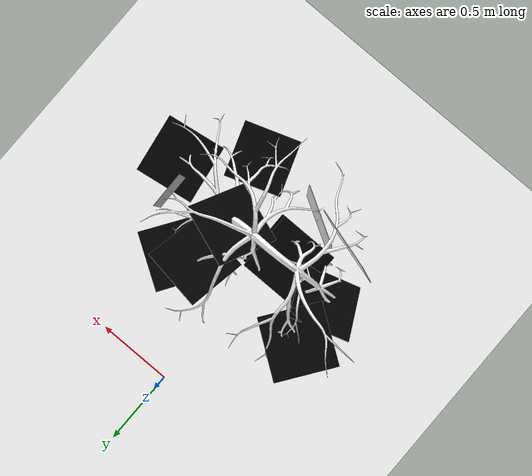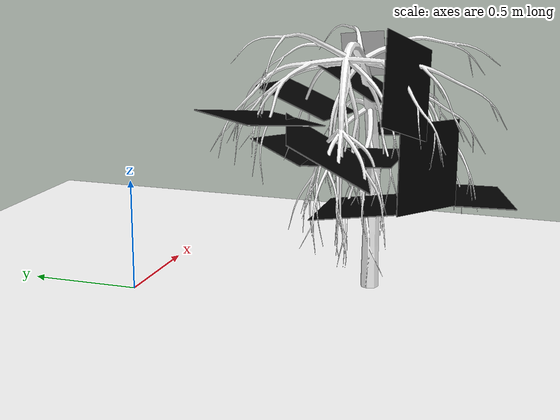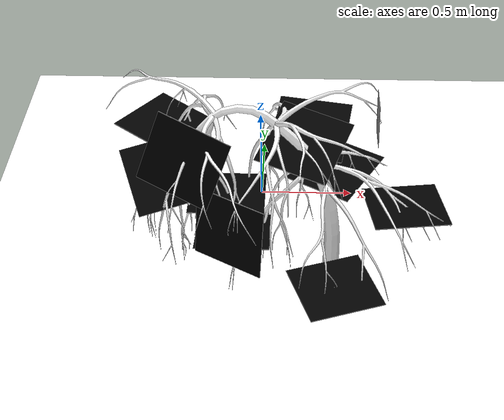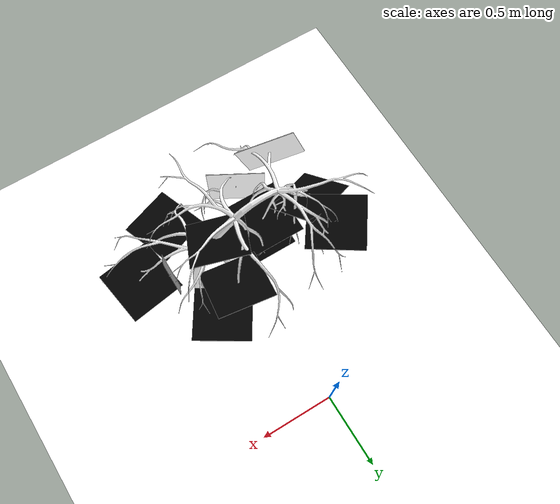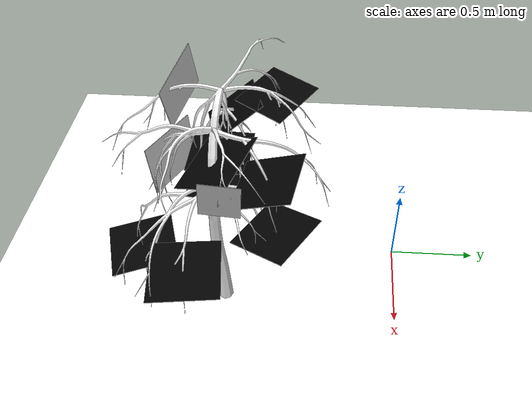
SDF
<?xml version="1.0"?>
<sdf version="1.7">
    <world name="apple_tree_5_marked">

        <plugin filename="gz-sim-physics-system" name="gz::sim::systems::Physics"/>
        <plugin filename="gz-sim-user-commands-system" name="gz::sim::systems::UserCommands"/>
        <plugin filename="gz-sim-scene-broadcaster-system" name="gz::sim::systems::SceneBroadcaster"/>
        <plugin filename="gz-sim-contact-system" name="gz::sim::systems::Contact"/>
        <plugin filename="gz-sim-sensors-system" name="gz::sim::systems::Sensors">
            <render_engine>ogre2</render_engine>
        </plugin>

        <physics type="ode">
            <max_step_size>0.01</max_step_size>
            <real_time_factor>1</real_time_factor>
            <max_contacts>10</max_contacts>
            <real_time_update_rate>1000</real_time_update_rate>
        </physics>

        <gravity>0 0 -9.8</gravity>

        <scene>
            <ambient>0.5 0.5 0.5 1</ambient>
            <background>0.3 0.7 0.9 1</background>
            <grid>false</grid>
            <sky>
                <clouds>
                    <speed>12</speed>
                </clouds>
            </sky>
            <shadows>true</shadows>
        </scene>

        <light name='sun' type='directional'>
            <pose>0 0 10 0 -0 0</pose>
            <cast_shadows>true</cast_shadows>
            <intensity>1</intensity>
            <direction>-0.5 0.1 -0.9</direction>
            <diffuse>0.8 0.8 0.8 1</diffuse>
            <specular>0.2 0.2 0.2 1</specular>
            <attenuation>
                <range>1000</range>
                <linear>0.01</linear>
                <constant>0.90000000000000002</constant>
                <quadratic>0.001</quadratic>
            </attenuation>
            <spot>
                <inner_angle>0</inner_angle>
                <outer_angle>0</outer_angle>
                <falloff>0</falloff>
            </spot>
        </light>

        <!-- Apple tree with crook canker disease -->
        <include>
            <uri>model://apple_tree_5</uri>
            <name>apple_tree_5</name>
            <pose>0.37377 -1.0 0 0 0 3.14159</pose> <!-- This goes 1.6 in x direction and -1 in y direction -->
        </include>

        <!-- Marker 0 (Shepherd's Crook) -->
        <include>
            <uri>model://aruco_marker_0</uri>
            <name>aruco_marker_0</name>
            <pose>0.574295 -0.904207 1.02896 -1.66139 0 0</pose>
        </include>

        <include>
            <uri>model://aruco_marker_1</uri>
            <name>aruco_marker_1</name>
            <pose>0.390707 -0.679226 0.613442 -1.53951 -0.195589 1.00522</pose>
        </include>

        <include>
            <uri>model://aruco_marker_2</uri>
            <name>aruco_marker_2</name>
            <pose>-0.415644 -0.744465 0.892917 -1.55406 0.117268 -0.616748</pose>
        </include>

        <include>
            <uri>model://aruco_marker_3</uri>
            <name>aruco_marker_3</name>
            <pose>-0.090014 -1.06497 0.497167 -1.71871 0 0</pose>
        </include>

        <include>
            <uri>model://aruco_marker_4</uri>
            <name>aruco_marker_4</name>
            <pose>-0.092005 -1.32432 0.679647 -0.527195 -1.51327 0</pose>
        </include>

        <include>
            <uri>model://aruco_marker_5</uri>
            <name>aruco_marker_5</name>
            <pose>0.386789 -1.41817 0.451857 -1.50461 -0.029565 0.338209</pose>
        </include>

        <!-- Marker 1 (Canker) -->
        <include>
            <uri>model://aruco_marker_6</uri>
            <name>aruco_marker_6</name>
            <pose>0.238417 -0.984792 0.945915 -1.15758 0.158992 -0.34652</pose>
        </include>

        <include>
            <uri>model://aruco_marker_7</uri>
            <name>aruco_marker_7</name>
            <pose>0.267463 -0.723498 0.859185 -1.20716 0.042127 -0.146433</pose>
        </include>

        <include>
            <uri>model://aruco_marker_8</uri>
            <name>aruco_marker_8</name>
            <pose>0.70961 -1.08859 0.671574 -1.61563 0.008878 0.150783</pose>
        </include>

        <include>
            <uri>model://aruco_marker_9</uri>
            <name>aruco_marker_9</name>
            <pose>-0.113741 -1.04356 0.700945 -1.61662 0 0</pose>
        </include>

        <include>
            <uri>model://aruco_marker_10</uri>
            <name>aruco_marker_10</name>
            <pose>-0.4015 -0.99997 0.777131 -1.01801 -0.148581 0.305181</pose>
        </include>

        <include>
            <uri>model://aruco_marker_11</uri>
            <name>aruco_marker_11</name>
            <pose>-0.287959 -1.26847 1.01593 -0.387766 -1.23396 0.085742</pose>
        </include>
    </world>
</sdf>

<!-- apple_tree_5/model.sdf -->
<sdf version="1.7">
    <model name="apple_tree_5">
        <static>true</static>
        <link name="ground">
        <visual name="ground">
            <geometry>
            <mesh>
                <uri>model://apple_tree_5/meshes/ground.obj</uri>
            </mesh>
            </geometry>
            <material>
            <ambient>0.600 0.600 0.600 1</ambient>
            <diffuse>1.000 1.000 1.000 1</diffuse>
            <specular>0.1 0.1 0.1 1</specular>
            <emissive>0 0 0 1</emissive>
            <pbr>
                <metal>
                <albedo_map>model://apple_tree_5/materials/dirt.jpg</albedo_map>
                <roughness>0.7</roughness>
                <metalness>0.0</metalness>
                </metal>
            </pbr>
            </material>
        </visual>
        <collision name="collision">
            <geometry>
            <mesh>
                <uri>model://apple_tree_5/meshes/ground.obj</uri>
            </mesh>
            </geometry>
            <surface>
            <contact/>
            </surface>
            <laser_retro>0.0</laser_retro>
        </collision>
        </link>
        <link name="apple_tree_5_link">

            <visual name="apple_tree_5_visual">
                <geometry>
                <mesh>
                    <uri>model://apple_tree_5/meshes/apple_tree_5.obj</uri>
                </mesh>
                </geometry>

                <material>
                    <ambient>0.6 0.6 0.6 1</ambient>
                    <diffuse>1 1 1 1</diffuse>
                    <specular>0.1 0.1 0.1 1</specular>
                    <emissive>0 0 0 1</emissive>

                    <pbr>
                        <metal>
                        <!-- Base color -->
                        <albedo_map>model://apple_tree_5/materials/tree_basecolor_baked.png</albedo_map>

                        <!-- Normal map -->
                        <normal_map>model://apple_tree_5/materials/tree_normal_baked.png</normal_map>

                        <!-- Roughness map (preferred) -->
                        <roughness_map>model://apple_tree_5/materials/tree_roughness_baked.png</roughness_map>

                        <!-- For bark -->
                        <metalness>0.0</metalness>

                        <!-- Optional: if your roughness map is missing/ignored, fallback constant -->
                        </metal>
                    </pbr>
                </material>

            </visual>

            <collision name="apple_tree_5_collision">
                <geometry>
                    <mesh>
                        <uri>model://apple_tree_5/meshes/apple_tree_5.obj</uri>
                    </mesh>
                </geometry>
                <surface>
                <contact>
                    <collide_without_contact>true</collide_without_contact>
                    <collide_bitmask>0x00</collide_bitmask>
                </contact>
                </surface>
            </collision>

        </link>
    </model>
</sdf>

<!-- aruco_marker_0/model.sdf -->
<sdf version='1.6'>
  <model name='aruco_marker_0'>
    <link name='link_0'>
      <pose frame=''>0 0 0 0 -0 0</pose>
      <inertial>
        <mass>1</mass>
        <inertia>
          <ixx>0</ixx>
          <ixy>0</ixy>
          <ixz>0</ixz>
          <iyy>0</iyy>
          <iyz>0</iyz>
          <izz>0</izz>
        </inertia>
      </inertial>
      <visual name='visual'>
        <pose frame=''>0 0 0 0 -0 0</pose>
        <geometry>
          <mesh>
            <uri>file://isr-testbed/aruco_marker_0/aruco_marker_0.dae</uri>
            <scale>0.1 0.1 0.1</scale>
          </mesh>
        </geometry>
        <material>
          <lighting>1</lighting>
          <script>
            <uri>file://media/materials/scripts/gazebo.material</uri>
            <name>Gazebo/DepthMapVS</name>
          </script>
          <ambient>0.3 0.3 0.3 1</ambient>
          <diffuse>0.7 0.7 0.7 1</diffuse>
          <specular>0.01 0.01 0.01 1</specular>
          <emissive>0 0 0 1</emissive>
        </material>
        <transparency>0</transparency>
        <cast_shadows>1</cast_shadows>
      </visual>
      <collision name='collision'>
        <laser_retro>0</laser_retro>
        <max_contacts>10</max_contacts>
        <pose frame=''>0 0 0 0 -0 0</pose>
        <geometry>
          <mesh>
            <uri>file://isr-testbed/aruco_marker_0/aruco_marker_0.dae</uri>
            <scale>0.1 0.1 0.1</scale>
          </mesh>
        </geometry>
        <surface>
          <friction>
            <ode>
              <mu>1</mu>
              <mu2>1</mu2>
              <fdir1>0 0 0</fdir1>
              <slip1>0</slip1>
              <slip2>0</slip2>
            </ode>
            <torsional>
              <coefficient>1</coefficient>
              <patch_radius>0</patch_radius>
              <surface_radius>0</surface_radius>
              <use_patch_radius>1</use_patch_radius>
              <ode>
                <slip>0</slip>
              </ode>
            </torsional>
          </friction>
          <bounce>
            <restitution_coefficient>0</restitution_coefficient>
            <threshold>1e+06</threshold>
          </bounce>
          <contact>
            <collide_without_contact>0</collide_without_contact>
            <collide_without_contact_bitmask>1</collide_without_contact_bitmask>
            <collide_bitmask>1</collide_bitmask>
            <ode>
              <soft_cfm>0</soft_cfm>
              <soft_erp>0.2</soft_erp>
              <kp>1e+13</kp>
              <kd>1</kd>
              <max_vel>0.01</max_vel>
              <min_depth>0</min_depth>
            </ode>
            <bullet>
              <split_impulse>1</split_impulse>
              <split_impulse_penetration_threshold>-0.01</split_impulse_penetration_threshold>
              <soft_cfm>0</soft_cfm>
              <soft_erp>0.2</soft_erp>
              <kp>1e+13</kp>
              <kd>1</kd>
            </bullet>
          </contact>
        </surface>
      </collision>
    </link>
    <static>1</static>
    <allow_auto_disable>1</allow_auto_disable>
  </model>
</sdf>

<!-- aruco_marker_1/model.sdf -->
<sdf version="1.9">
  <model name="aruco_marker_1">
    <static>true</static>

    <link name="link">
      <visual name="front">
        <pose>0 0 0 0 0 0</pose>
        <geometry>
          <box>
            <size>0.35 0.002 0.35</size>
          </box>
        </geometry>

        <material>
          <ambient>1 1 1 1</ambient>
          <diffuse>1 1 1 1</diffuse>
          <specular>0.1 0.1 0.1 1</specular>
          <emissive>0 0 0 1</emissive>

          <pbr>
            <metal>
              <albedo_map>
                model://aruco/aruco_marker_1/materials/textures/marker_1.png
              </albedo_map>
              <emissive_map>
                model://aruco/aruco_marker_1/materials/textures/marker_1.png
              </emissive_map>
            </metal>
          </pbr>
        </material>
      </visual>

      <visual name="back">
        <pose>0 -0.002 0 0 0 3.1416</pose>
        <geometry>
          <box>
            <size>0.35 0.002 0.35</size>
          </box>
        </geometry>
        <material>
          <ambient>0 0 0 1</ambient>
          <diffuse>0 0 0 1</diffuse>
        </material>
      </visual>

    </link>

  </model>
</sdf>

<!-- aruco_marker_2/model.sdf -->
<sdf version="1.9">
  <model name="aruco_marker_2">
    <static>true</static>

    <link name="link">
      <visual name="front">
        <pose>0 0 0 0 0 0</pose>
        <geometry>
          <box>
            <size>0.35 0.002 0.35</size>
          </box>
        </geometry>

        <material>
          <ambient>1 1 1 1</ambient>
          <diffuse>1 1 1 1</diffuse>
          <specular>0.1 0.1 0.1 1</specular>
          <emissive>0 0 0 1</emissive>

          <pbr>
            <metal>
              <albedo_map>
                model://aruco/aruco_marker_2/materials/textures/marker_2.png
              </albedo_map>
              <emissive_map>
                model://aruco/aruco_marker_2/materials/textures/marker_2.png
              </emissive_map>
            </metal>
          </pbr>
        </material>
      </visual>

      <visual name="back">
        <pose>0 -0.002 0 0 0 3.1416</pose>
        <geometry>
          <box>
            <size>0.35 0.002 0.35</size>
          </box>
        </geometry>
        <material>
          <ambient>0 0 0 1</ambient>
          <diffuse>0 0 0 1</diffuse>
        </material>
      </visual>

    </link>

  </model>
</sdf>

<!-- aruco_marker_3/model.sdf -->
<sdf version="1.9">
  <model name="aruco_marker_3">
    <static>true</static>

    <link name="link">
      <visual name="front">
        <pose>0 0 0 0 0 0</pose>
        <geometry>
          <box>
            <size>0.35 0.002 0.35</size>
          </box>
        </geometry>

        <material>
          <ambient>1 1 1 1</ambient>
          <diffuse>1 1 1 1</diffuse>
          <specular>0.1 0.1 0.1 1</specular>
          <emissive>0 0 0 1</emissive>

          <pbr>
            <metal>
              <albedo_map>
                model://aruco/aruco_marker_3/materials/textures/marker_3.png
              </albedo_map>
              <emissive_map>
                model://aruco/aruco_marker_3/materials/textures/marker_3.png
              </emissive_map>
            </metal>
          </pbr>
        </material>
      </visual>

      <visual name="back">
        <pose>0 -0.002 0 0 0 3.1416</pose>
        <geometry>
          <box>
            <size>0.35 0.002 0.35</size>
          </box>
        </geometry>
        <material>
          <ambient>0 0 0 1</ambient>
          <diffuse>0 0 0 1</diffuse>
        </material>
      </visual>

    </link>

  </model>
</sdf>

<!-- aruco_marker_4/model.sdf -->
<sdf version="1.9">
  <model name="aruco_marker_4">
    <static>true</static>

    <link name="link">
      <visual name="front">
        <pose>0 0 0 0 0 0</pose>
        <geometry>
          <box>
            <size>0.35 0.002 0.35</size>
          </box>
        </geometry>

        <material>
          <ambient>1 1 1 1</ambient>
          <diffuse>1 1 1 1</diffuse>
          <specular>0.1 0.1 0.1 1</specular>
          <emissive>0 0 0 1</emissive>

          <pbr>
            <metal>
              <albedo_map>
                model://aruco/aruco_marker_4/materials/textures/marker_4.png
              </albedo_map>
              <emissive_map>
                model://aruco/aruco_marker_4/materials/textures/marker_4.png
              </emissive_map>
            </metal>
          </pbr>
        </material>
      </visual>

      <visual name="back">
        <pose>0 -0.002 0 0 0 3.1416</pose>
        <geometry>
          <box>
            <size>0.35 0.002 0.35</size>
          </box>
        </geometry>
        <material>
          <ambient>0 0 0 1</ambient>
          <diffuse>0 0 0 1</diffuse>
        </material>
      </visual>

    </link>

  </model>
</sdf>

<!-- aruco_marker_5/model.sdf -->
<sdf version="1.9">
  <model name="aruco_marker_5">
    <static>true</static>

    <link name="link">
      <visual name="front">
        <pose>0 0 0 0 0 0</pose>
        <geometry>
          <box>
            <size>0.35 0.002 0.35</size>
          </box>
        </geometry>

        <material>
          <ambient>1 1 1 1</ambient>
          <diffuse>1 1 1 1</diffuse>
          <specular>0.1 0.1 0.1 1</specular>
          <emissive>0 0 0 1</emissive>

          <pbr>
            <metal>
              <albedo_map>
                model://aruco/aruco_marker_5/materials/textures/marker_5.png
              </albedo_map>
              <emissive_map>
                model://aruco/aruco_marker_5/materials/textures/marker_5.png
              </emissive_map>
            </metal>
          </pbr>
        </material>
      </visual>

      <visual name="back">
        <pose>0 -0.002 0 0 0 3.1416</pose>
        <geometry>
          <box>
            <size>0.35 0.002 0.35</size>
          </box>
        </geometry>
        <material>
          <ambient>0 0 0 1</ambient>
          <diffuse>0 0 0 1</diffuse>
        </material>
      </visual>

    </link>

  </model>
</sdf>

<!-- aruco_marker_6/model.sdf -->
<sdf version="1.9">
  <model name="aruco_marker_6">
    <static>true</static>

    <link name="link">
      <visual name="front">
        <pose>0 0 0 0 0 0</pose>
        <geometry>
          <box>
            <size>0.35 0.002 0.35</size>
          </box>
        </geometry>

        <material>
          <ambient>1 1 1 1</ambient>
          <diffuse>1 1 1 1</diffuse>
          <specular>0.1 0.1 0.1 1</specular>
          <emissive>0 0 0 1</emissive>

          <pbr>
            <metal>
              <albedo_map>
                model://aruco/aruco_marker_6/materials/textures/marker_6.png
              </albedo_map>
              <emissive_map>
                model://aruco/aruco_marker_6/materials/textures/marker_6.png
              </emissive_map>
            </metal>
          </pbr>
        </material>
      </visual>

      <visual name="back">
        <pose>0 -0.002 0 0 0 3.1416</pose>
        <geometry>
          <box>
            <size>0.35 0.002 0.35</size>
          </box>
        </geometry>
        <material>
          <ambient>0 0 0 1</ambient>
          <diffuse>0 0 0 1</diffuse>
        </material>
      </visual>

    </link>

  </model>
</sdf>

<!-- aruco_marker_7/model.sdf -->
<sdf version="1.9">
  <model name="aruco_marker_7">
    <static>true</static>

    <link name="link">
      <visual name="front">
        <pose>0 0 0 0 0 0</pose>
        <geometry>
          <box>
            <size>0.35 0.002 0.35</size>
          </box>
        </geometry>

        <material>
          <ambient>1 1 1 1</ambient>
          <diffuse>1 1 1 1</diffuse>
          <specular>0.1 0.1 0.1 1</specular>
          <emissive>0 0 0 1</emissive>

          <pbr>
            <metal>
              <albedo_map>
                model://aruco/aruco_marker_7/materials/textures/marker_7.png
              </albedo_map>
              <emissive_map>
                model://aruco/aruco_marker_7/materials/textures/marker_7.png
              </emissive_map>
            </metal>
          </pbr>
        </material>
      </visual>

      <visual name="back">
        <pose>0 -0.002 0 0 0 3.1416</pose>
        <geometry>
          <box>
            <size>0.35 0.002 0.35</size>
          </box>
        </geometry>
        <material>
          <ambient>0 0 0 1</ambient>
          <diffuse>0 0 0 1</diffuse>
        </material>
      </visual>

    </link>

  </model>
</sdf>

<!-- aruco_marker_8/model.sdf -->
<sdf version="1.9">
  <model name="aruco_marker_8">
    <static>true</static>

    <link name="link">
      <visual name="front">
        <pose>0 0 0 0 0 0</pose>
        <geometry>
          <box>
            <size>0.35 0.002 0.35</size>
          </box>
        </geometry>

        <material>
          <ambient>1 1 1 1</ambient>
          <diffuse>1 1 1 1</diffuse>
          <specular>0.1 0.1 0.1 1</specular>
          <emissive>0 0 0 1</emissive>

          <pbr>
            <metal>
              <albedo_map>
                model://aruco/aruco_marker_8/materials/textures/marker_8.png
              </albedo_map>
              <emissive_map>
                model://aruco/aruco_marker_8/materials/textures/marker_8.png
              </emissive_map>
            </metal>
          </pbr>
        </material>
      </visual>

      <visual name="back">
        <pose>0 -0.002 0 0 0 3.1416</pose>
        <geometry>
          <box>
            <size>0.35 0.002 0.35</size>
          </box>
        </geometry>
        <material>
          <ambient>0 0 0 1</ambient>
          <diffuse>0 0 0 1</diffuse>
        </material>
      </visual>

    </link>

  </model>
</sdf>

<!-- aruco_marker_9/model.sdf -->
<sdf version="1.9">
  <model name="aruco_marker_9">
    <static>true</static>

    <link name="link">
      <visual name="front">
        <pose>0 0 0 0 0 0</pose>
        <geometry>
          <box>
            <size>0.35 0.002 0.35</size>
          </box>
        </geometry>

        <material>
          <ambient>1 1 1 1</ambient>
          <diffuse>1 1 1 1</diffuse>
          <specular>0.1 0.1 0.1 1</specular>
          <emissive>0 0 0 1</emissive>

          <pbr>
            <metal>
              <albedo_map>
                model://aruco/aruco_marker_9/materials/textures/marker_9.png
              </albedo_map>
              <emissive_map>
                model://aruco/aruco_marker_9/materials/textures/marker_9.png
              </emissive_map>
            </metal>
          </pbr>
        </material>
      </visual>

      <visual name="back">
        <pose>0 -0.002 0 0 0 3.1416</pose>
        <geometry>
          <box>
            <size>0.35 0.002 0.35</size>
          </box>
        </geometry>
        <material>
          <ambient>0 0 0 1</ambient>
          <diffuse>0 0 0 1</diffuse>
        </material>
      </visual>

    </link>

  </model>
</sdf>

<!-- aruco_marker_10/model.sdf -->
<sdf version="1.9">
  <model name="aruco_marker_10">
    <static>true</static>

    <link name="link">
      <visual name="front">
        <pose>0 0 0 0 0 0</pose>
        <geometry>
          <box>
            <size>0.35 0.002 0.35</size>
          </box>
        </geometry>

        <material>
          <ambient>1 1 1 1</ambient>
          <diffuse>1 1 1 1</diffuse>
          <specular>0.1 0.1 0.1 1</specular>
          <emissive>0 0 0 1</emissive>

          <pbr>
            <metal>
              <albedo_map>
                model://aruco/aruco_marker_10/materials/textures/marker_10.png
              </albedo_map>
              <emissive_map>
                model://aruco/aruco_marker_10/materials/textures/marker_10.png
              </emissive_map>
            </metal>
          </pbr>
        </material>
      </visual>

      <visual name="back">
        <pose>0 -0.002 0 0 0 3.1416</pose>
        <geometry>
          <box>
            <size>0.35 0.002 0.35</size>
          </box>
        </geometry>
        <material>
          <ambient>0 0 0 1</ambient>
          <diffuse>0 0 0 1</diffuse>
        </material>
      </visual>

    </link>

  </model>
</sdf>

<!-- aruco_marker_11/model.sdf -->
<sdf version="1.9">
  <model name="aruco_marker_11">
    <static>true</static>

    <link name="link">
      <visual name="front">
        <pose>0 0 0 0 0 0</pose>
        <geometry>
          <box>
            <size>0.35 0.002 0.35</size>
          </box>
        </geometry>

        <material>
          <ambient>1 1 1 1</ambient>
          <diffuse>1 1 1 1</diffuse>
          <specular>0.1 0.1 0.1 1</specular>
          <emissive>0 0 0 1</emissive>

          <pbr>
            <metal>
              <albedo_map>
                model://aruco/aruco_marker_11/materials/textures/marker_11.png
              </albedo_map>
              <emissive_map>
                model://aruco/aruco_marker_11/materials/textures/marker_11.png
              </emissive_map>
            </metal>
          </pbr>
        </material>
      </visual>

      <visual name="back">
        <pose>0 -0.002 0 0 0 3.1416</pose>
        <geometry>
          <box>
            <size>0.35 0.002 0.35</size>
          </box>
        </geometry>
        <material>
          <ambient>0 0 0 1</ambient>
          <diffuse>0 0 0 1</diffuse>
        </material>
      </visual>

    </link>

  </model>
</sdf>
